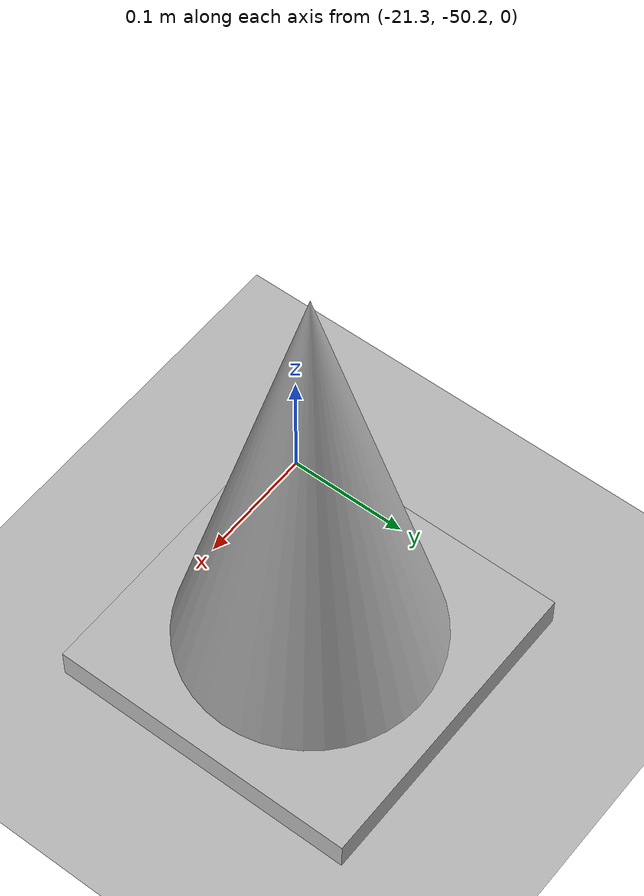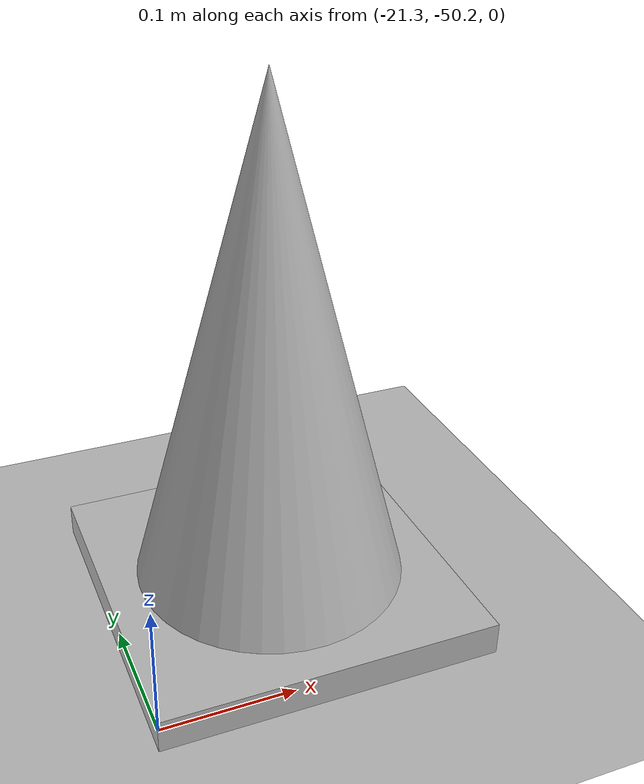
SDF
<sdf version='1.9'>
  <world name='phoenix_world'>
    <physics name='1ms' type='ignored'>
      <max_step_size>0.001</max_step_size>
      <real_time_factor>1.0</real_time_factor>
      <real_time_update_rate>1000</real_time_update_rate>
    </physics>
    <plugin name='ignition::gazebo::systems::Physics' filename='ignition-gazebo-physics-system'/>
    <plugin name='ignition::gazebo::systems::Sensors' filename='ignition-gazebo-sensors-system'>
      <render_engine>ogre2</render_engine>
    </plugin>
    <plugin name='ignition::gazebo::systems::UserCommands' filename='ignition-gazebo-user-commands-system'/>
    <plugin name='ignition::gazebo::systems::SceneBroadcaster' filename='ignition-gazebo-scene-broadcaster-system'/>
    <plugin name='ignition::gazebo::systems::Contact' filename='ignition-gazebo-contact-system'/>
    <plugin name='ignition::gazebo::systems::Imu' filename='libignition-gazebo-imu-system.so'/>
    <gravity>0 0 -9.8</gravity>
    <magnetic_field>5.5645e-6 22.8758e-6 -42.3884e-6</magnetic_field>
    <atmosphere type='adiabatic'/>
    <scene>
      <ambient>0.4 0.4 0.4 1.0</ambient>
      <background>.7 .7 .7 1</background>
      <shadows>true</shadows>
    </scene>

    <model name='ground_plane'>
      <static>1</static>
      <link name='link'>
        <visual name='visual'>
          <geometry>
            <mesh>
            	<uri>../models/purdue_track/track.dae</uri>
            </mesh>
          </geometry>
        </visual>
        <collision name='collision'>
          <geometry>
            <mesh>
            	<uri>../models/purdue_track/track.dae</uri>
            </mesh>
          </geometry>
        </collision>
        <pose>0 0 0 0 -0 0</pose>
        <inertial>
          <pose>0 0 0 0 -0 0</pose>
          <mass>1</mass>
          <inertia>
            <ixx>1</ixx>
            <ixy>0</ixy>
            <ixz>0</ixz>
            <iyy>1</iyy>
            <iyz>0</iyz>
            <izz>1</izz>
          </inertia>
        </inertial>
        <enable_wind>false</enable_wind>
      </link>
      <pose>-2.79814 -3.76845 0 0 -0 0</pose>
      <static>false</static>
      <self_collide>false</self_collide>
    </model>

    <!--Good area overlay in the sky-->
<!--        &lt;!&ndash; Offset the pose slightly cause it doesn't line up otherwise for some reason&ndash;&gt;-->

    <model name='cone1'>
      <static>0</static>
      <link name='cone'>
        <visual name='visual'>
          <geometry>
            <mesh>
            	<uri>../models/isc_cone/cone.dae</uri>
            </mesh>
          </geometry>
        </visual>
        <collision name='collision'>
          <geometry>
            <mesh>
            	<uri>../models/isc_cone/Cone.STL</uri>
            </mesh>
          </geometry>
        </collision>
        <pose>0 0 0 0 -0 0</pose>
        <inertial>
          <pose>0 0 0 0 0 0</pose>
          <mass>1</mass>
          <inertia>
            <ixx>1</ixx>
            <ixy>0</ixy>
            <ixz>0</ixz>
            <iyy>1</iyy>
            <iyz>0</iyz>
            <izz>1</izz>
          </inertia>
        </inertial>
        <enable_wind>false</enable_wind>
      </link>
      <pose>-21.17 -50.09 0 0 -0 0</pose>
      <static>false</static>
      <self_collide>false</self_collide>
    </model>

    <light name='sun' type='directional'>
      <pose>0 0 10 0 -0 0</pose>
      <cast_shadows>1</cast_shadows>
      <intensity>1</intensity>
      <direction>-0.5 0.1 -0.9</direction>
      <diffuse>0.8 0.8 0.8 1</diffuse>
      <specular>0.2 0.2 0.2 1</specular>
      <attenuation>
        <range>1000</range>
        <linear>0.01</linear>
        <constant>0.9</constant>
        <quadratic>0.001</quadratic>
      </attenuation>
      <spot>
        <inner_angle>0</inner_angle>
        <outer_angle>0</outer_angle>
        <falloff>0</falloff>
      </spot>
    </light>
  </world>
</sdf>
